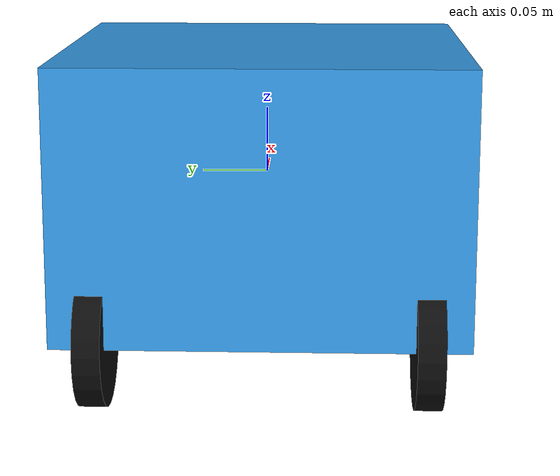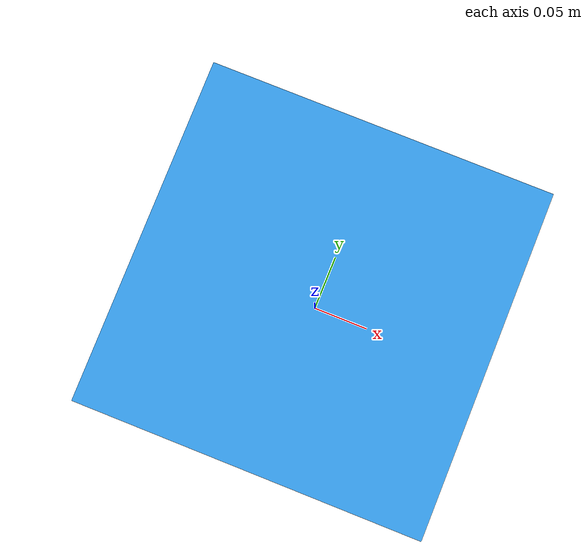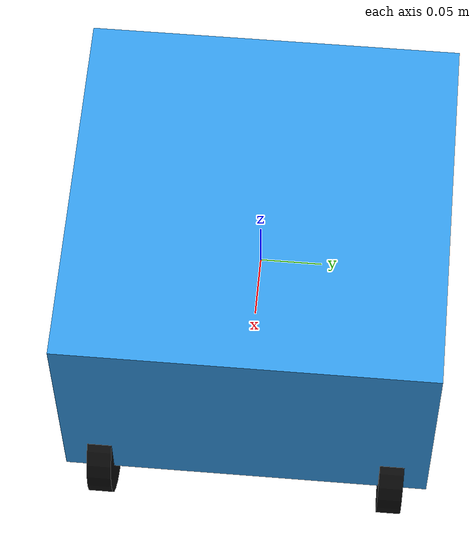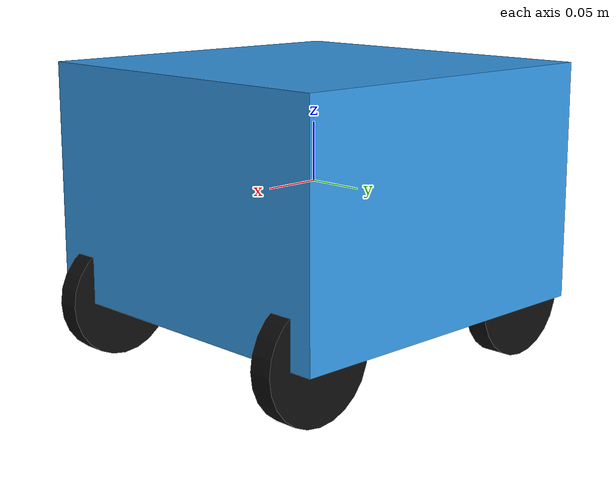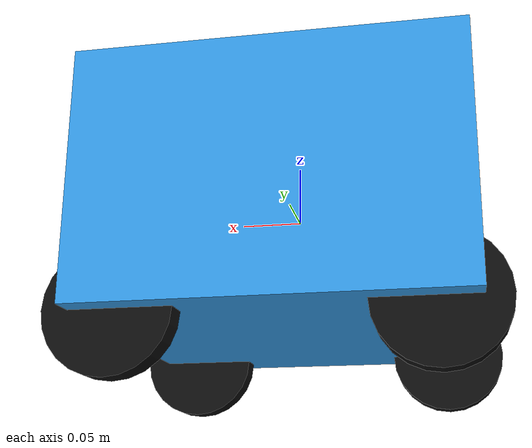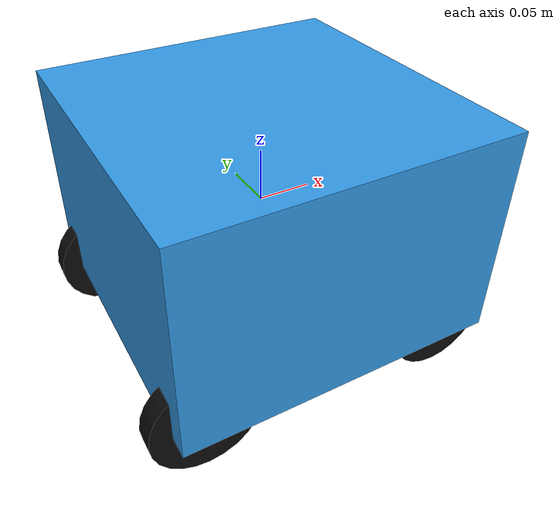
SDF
<?xml version="1.0"?>
<sdf version="1.5">
  <model name="random_robot">
    <plugin name="random_robot_controller" filename="librandom_robot_plugin.so"/>

    <link name="base_link">
      <inertial>
        <mass>3.0</mass>
        <inertia>
          <ixx>0.05</ixx>
          <iyy>0.05</iyy>
          <izz>0.05</izz>
        </inertia>
      </inertial>

      <velocity_decay>
        <linear>0.1</linear>
        <angular>0.1</angular>
      </velocity_decay>

      <collision name="collision">
        <geometry>
          <box>
            <size>0.3 0.3 0.2</size>
          </box>
        </geometry>
        <surface>
          <friction>
            <ode>
              <mu>1.0</mu>
              <mu2>1.0</mu2>
            </ode>
          </friction>
        </surface>
      </collision>

      <!-- Body visual -->
      <visual name="visual">
        <geometry>
          <box>
            <size>0.3 0.3 0.2</size>
          </box>
        </geometry>
        <material>
          <ambient>0.2 0.6 0.9 1</ambient>
          <diffuse>0.2 0.6 0.9 1</diffuse>
          <specular>0.4 0.4 0.4 1</specular>
        </material>
      </visual>

      <!-- Params -->
      <!-- radius=0.05, width=0.02 -->
      <!-- wheel centers at corners -->

      <visual name="wheel_fl_visual">
        <pose> 0.12  0.12  -0.1  1.57079632679 0 0</pose>
        <geometry>
          <cylinder>
            <radius>0.05</radius>
            <length>0.02</length>
          </cylinder>
        </geometry>
        <material>
          <ambient>0.05 0.05 0.05 1</ambient>
          <diffuse>0.05 0.05 0.05 1</diffuse>
        </material>
      </visual>

      <visual name="wheel_fr_visual">
        <pose> 0.12 -0.12  -0.1  1.57079632679 0 0</pose>
        <geometry>
          <cylinder>
            <radius>0.05</radius>
            <length>0.02</length>
          </cylinder>
        </geometry>
        <material>
          <ambient>0.05 0.05 0.05 1</ambient>
          <diffuse>0.05 0.05 0.05 1</diffuse>
        </material>
      </visual>

      <visual name="wheel_rl_visual">
        <pose>-0.12  0.12  -0.1  1.57079632679 0 0</pose>
        <geometry>
          <cylinder>
            <radius>0.05</radius>
            <length>0.02</length>
          </cylinder>
        </geometry>
        <material>
          <ambient>0.05 0.05 0.05 1</ambient>
          <diffuse>0.05 0.05 0.05 1</diffuse>
        </material>
      </visual>

      <visual name="wheel_rr_visual">
        <pose>-0.12 -0.12  -0.1  1.57079632679 0 0</pose>
        <geometry>
          <cylinder>
            <radius>0.05</radius>
            <length>0.02</length>
          </cylinder>
        </geometry>
        <material>
          <ambient>0.05 0.05 0.05 1</ambient>
          <diffuse>0.05 0.05 0.05 1</diffuse>
        </material>
      </visual>

    </link>
  </model>
</sdf>
